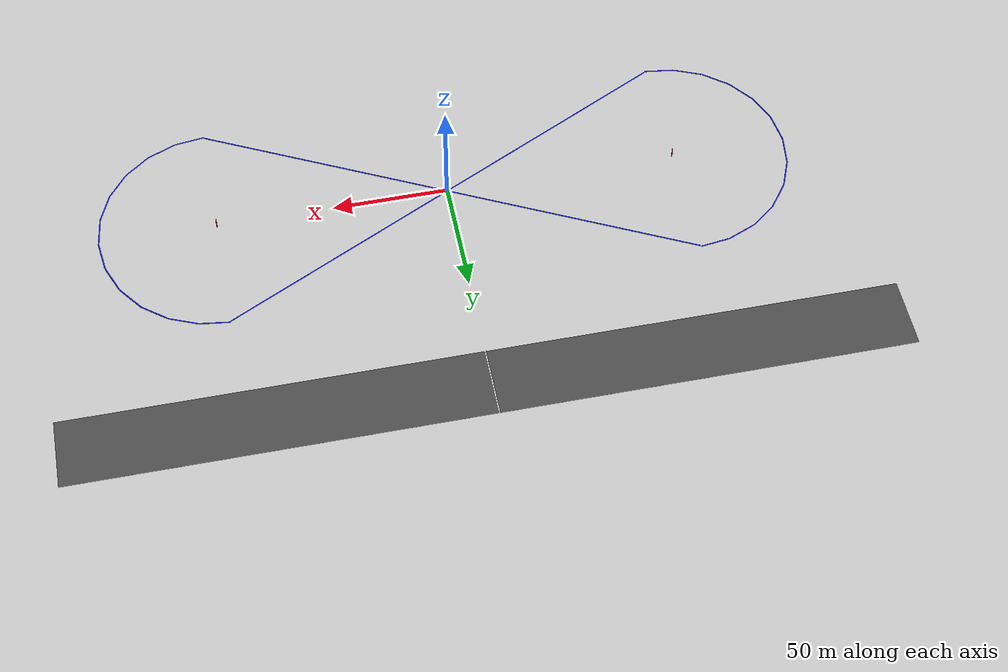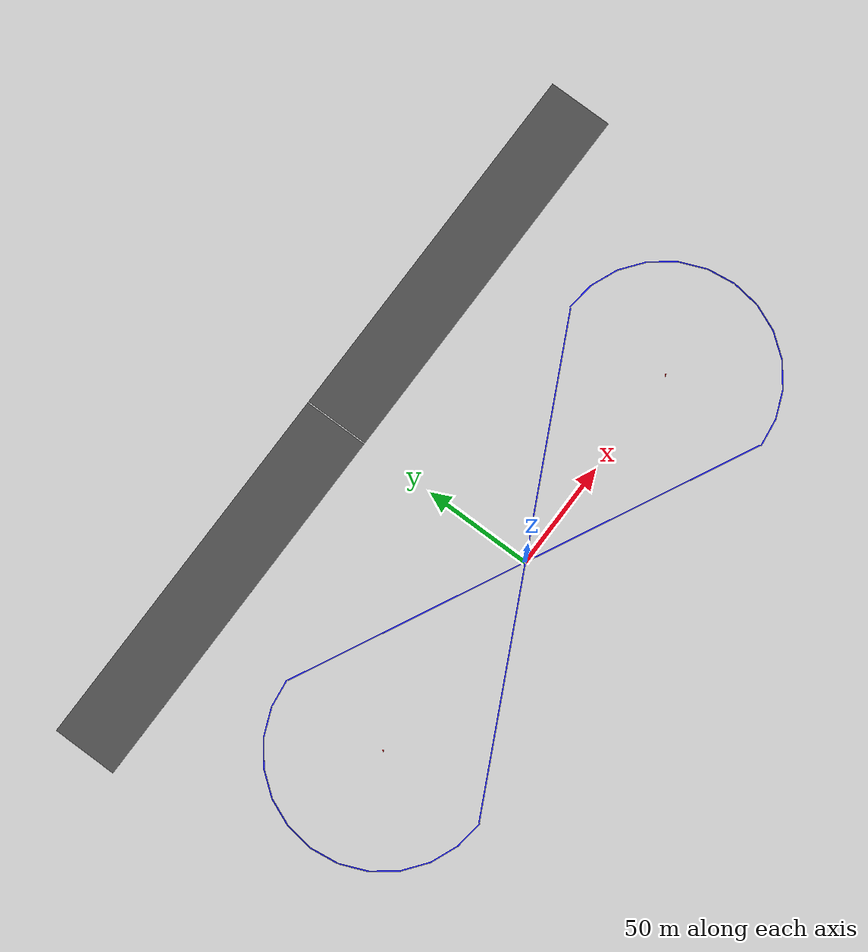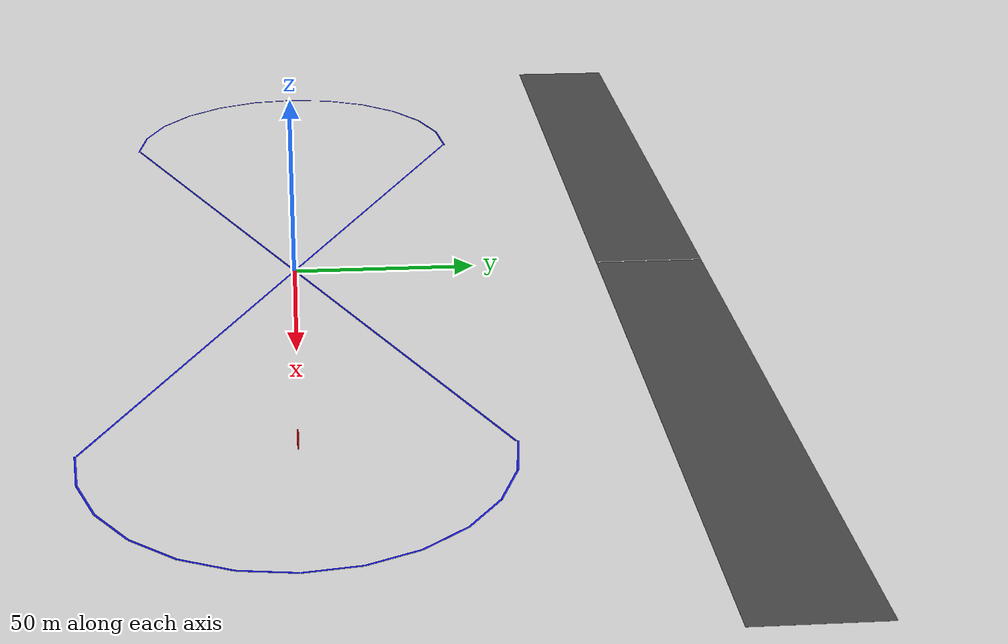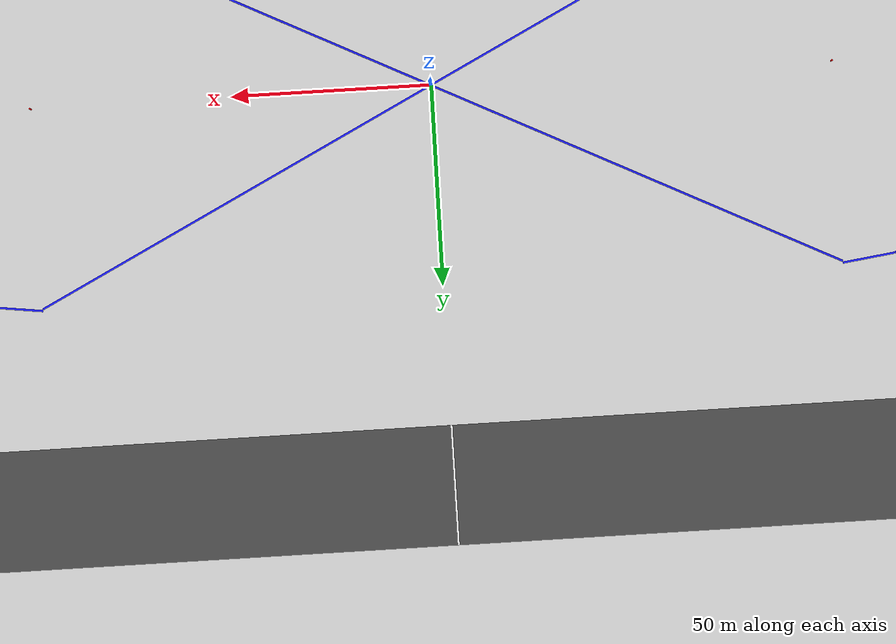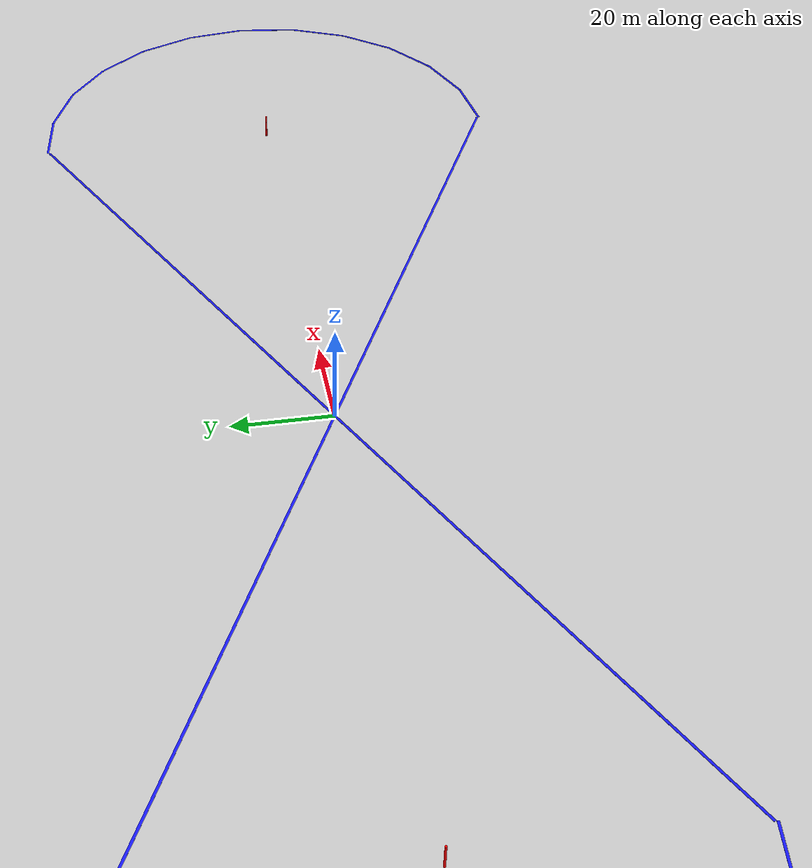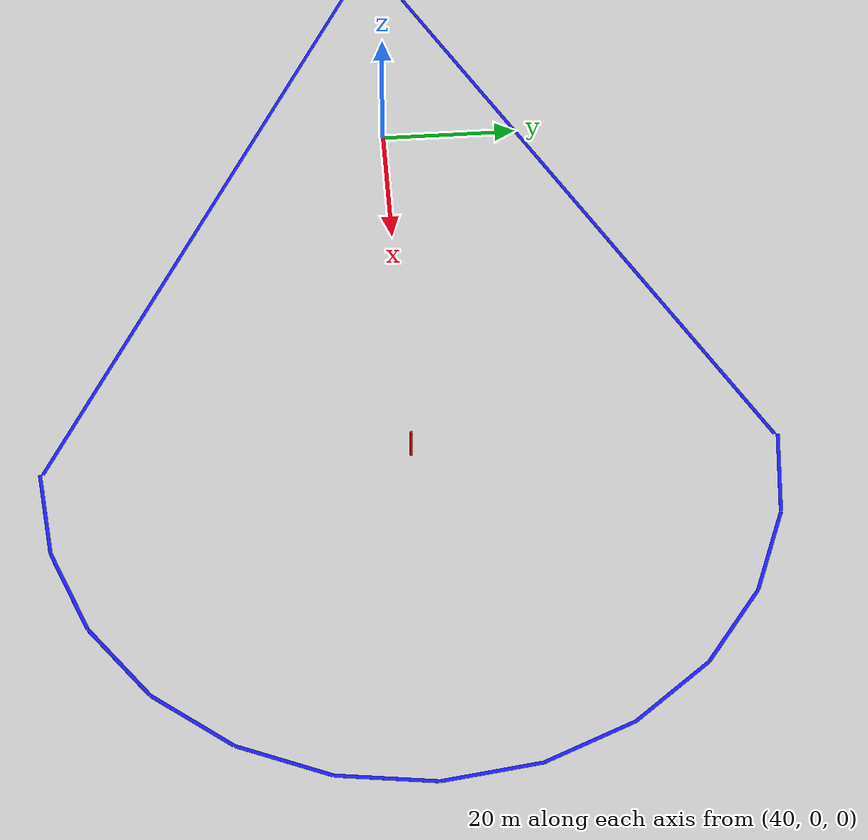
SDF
<sdf version="1.9">
 <world name="iris_runway">
  <physics name="1ms" type="ignore">
   <max_step_size>0.001</max_step_size>
   <real_time_factor>1.0</real_time_factor>
  </physics>
  <plugin filename="gz-sim-physics-system" name="gz::sim::systems::Physics"/>
  <plugin filename="gz-sim-sensors-system" name="gz::sim::systems::Sensors">
   <render_engine>ogre2</render_engine>
  </plugin>
  <plugin filename="gz-sim-user-commands-system" name="gz::sim::systems::UserCommands"/>
  <plugin filename="gz-sim-scene-broadcaster-system" name="gz::sim::systems::SceneBroadcaster"/>
  <plugin filename="gz-sim-imu-system" name="gz::sim::systems::Imu"/>
  <plugin filename="gz-sim-navsat-system" name="gz::sim::systems::NavSat"/>
  <scene><ambient>1.0 1.0 1.0</ambient><background>0.8 0.8 0.8</background></scene>
  <spherical_coordinates>
   <latitude_deg>-35.363262</latitude_deg>
   <longitude_deg>149.165237</longitude_deg>
   <elevation>584</elevation>
   <heading_deg>0</heading_deg>
   <surface_model>EARTH_WGS84</surface_model>
  </spherical_coordinates>
  <light type="directional" name="sun">
   <pose>0 0 10 0 0 0</pose>
   <diffuse>0.8 0.8 0.8 1</diffuse>
   <specular>0.8 0.8 0.8 1</specular>
   <attenuation>
    <range>1000</range>
    <constant>0.9</constant>
    <linear>0.01</linear>
    <quadratic>0.001</quadratic>
   </attenuation>
   <direction>-0.5 0.1 -0.9</direction>
  </light>
  <model name="axes">
   <static>1</static>
   <link name="link">
    <visual name="r">
     <cast_shadows>0</cast_shadows>
     <pose>5 0 0.1 0 0 0</pose>
     <geometry><box><size>10 0.01 0.01</size></box></geometry>
     <material>
      <ambient>1 0 0 0.8</ambient>
      <diffuse>1 0 0 0.8</diffuse>
      <emissive>1 0 0 0.8</emissive>
      <specular>0.5 0.5 0.5 0.8</specular>
     </material>
    </visual>
    <visual name="g">
     <cast_shadows>0</cast_shadows>
     <pose>0 5 0.1 0 0 0</pose>
     <geometry><box><size>0.01 10 0.01</size></box></geometry>
     <material>
      <ambient>0 1 0 0.8</ambient>
      <diffuse>0 1 0 0.8</diffuse>
      <emissive>0 1 0 0.8</emissive>
      <specular>0.5 0.5 0.5 0.8</specular>
     </material>
    </visual>
    <visual name="b">
     <cast_shadows>0</cast_shadows>
     <pose>0 0 5.1 0 0 0</pose>
     <geometry><box><size>0.01 0.01 10</size></box></geometry>
     <material>
      <ambient>0 0 1 0.8</ambient>
      <diffuse>0 0 1 0.8</diffuse>
      <emissive>0 0 1 0.8</emissive>
      <specular>0.5 0.5 0.5 0.8</specular>
     </material>
    </visual>
    <sensor name="navsat_sensor" type="navsat"><always_on>1</always_on><update_rate>1</update_rate></sensor>
   </link>
  </model>
  <model name="flight_path_visual_aid">
   <static>true</static>
   <pose>0 0 0.08 0 0 0</pose>
   <link name="path_link">
    <visual name="right_arc_1">
     <pose>106.5263 49.5722 0 0 0 3.0107</pose>
     <geometry><box><size>13.0900 0.5 0.02</size></box></geometry>
     <material><ambient>0.1 0.1 1 1</ambient><diffuse>0.1 0.1 1 1</diffuse></material>
    </visual>
    <visual name="right_arc_2">
     <pose>119.1342 46.1940 0 0 0 2.7489</pose>
     <geometry><box><size>13.0900 0.5 0.02</size></box></geometry>
     <material><ambient>0.1 0.1 1 1</ambient><diffuse>0.1 0.1 1 1</diffuse></material>
    </visual>
    <visual name="right_arc_3">
     <pose>130.4381 39.6677 0 0 0 2.4871</pose>
     <geometry><box><size>13.0900 0.5 0.02</size></box></geometry>
     <material><ambient>0.1 0.1 1 1</ambient><diffuse>0.1 0.1 1 1</diffuse></material>
    </visual>
    <visual name="right_arc_4">
     <pose>139.6677 30.4381 0 0 0 2.2253</pose>
     <geometry><box><size>13.0900 0.5 0.02</size></box></geometry>
     <material><ambient>0.1 0.1 1 1</ambient><diffuse>0.1 0.1 1 1</diffuse></material>
    </visual>
    <visual name="right_arc_5">
     <pose>146.1940 19.1342 0 0 0 1.9635</pose>
     <geometry><box><size>13.0900 0.5 0.02</size></box></geometry>
     <material><ambient>0.1 0.1 1 1</ambient><diffuse>0.1 0.1 1 1</diffuse></material>
    </visual>
    <visual name="right_arc_6">
     <pose>149.5722 6.5263 0 0 0 1.7017</pose>
     <geometry><box><size>13.0900 0.5 0.02</size></box></geometry>
     <material><ambient>0.1 0.1 1 1</ambient><diffuse>0.1 0.1 1 1</diffuse></material>
    </visual>
    <visual name="right_arc_7">
     <pose>149.5722 -6.5263 0 0 0 1.4399</pose>
     <geometry><box><size>13.0900 0.5 0.02</size></box></geometry>
     <material><ambient>0.1 0.1 1 1</ambient><diffuse>0.1 0.1 1 1</diffuse></material>
    </visual>
    <visual name="right_arc_8">
     <pose>146.1940 -19.1342 0 0 0 1.1781</pose>
     <geometry><box><size>13.0900 0.5 0.02</size></box></geometry>
     <material><ambient>0.1 0.1 1 1</ambient><diffuse>0.1 0.1 1 1</diffuse></material>
    </visual>
    <visual name="right_arc_9">
     <pose>139.6677 -30.4381 0 0 0 0.9163</pose>
     <geometry><box><size>13.0900 0.5 0.02</size></box></geometry>
     <material><ambient>0.1 0.1 1 1</ambient><diffuse>0.1 0.1 1 1</diffuse></material>
    </visual>
    <visual name="right_arc_10">
     <pose>130.4381 -39.6677 0 0 0 0.6545</pose>
     <geometry><box><size>13.0900 0.5 0.02</size></box></geometry>
     <material><ambient>0.1 0.1 1 1</ambient><diffuse>0.1 0.1 1 1</diffuse></material>
    </visual>
    <visual name="right_arc_11">
     <pose>119.1342 -46.1940 0 0 0 0.3927</pose>
     <geometry><box><size>13.0900 0.5 0.02</size></box></geometry>
     <material><ambient>0.1 0.1 1 1</ambient><diffuse>0.1 0.1 1 1</diffuse></material>
    </visual>
    <visual name="right_arc_12">
     <pose>106.5263 -49.5722 0 0 0 0.1309</pose>
     <geometry><box><size>13.0900 0.5 0.02</size></box></geometry>
     <material><ambient>0.1 0.1 1 1</ambient><diffuse>0.1 0.1 1 1</diffuse></material>
    </visual>
    <visual name="left_arc_1">
     <pose>-106.5263 49.5722 0 0 0 3.2725</pose>
     <geometry><box><size>13.0900 0.5 0.02</size></box></geometry>
     <material><ambient>0.1 0.1 1 1</ambient><diffuse>0.1 0.1 1 1</diffuse></material>
    </visual>
    <visual name="left_arc_2">
     <pose>-119.1342 46.1940 0 0 0 3.5343</pose>
     <geometry><box><size>13.0900 0.5 0.02</size></box></geometry>
     <material><ambient>0.1 0.1 1 1</ambient><diffuse>0.1 0.1 1 1</diffuse></material>
    </visual>
    <visual name="left_arc_3">
     <pose>-130.4381 39.6677 0 0 0 3.7961</pose>
     <geometry><box><size>13.0900 0.5 0.02</size></box></geometry>
     <material><ambient>0.1 0.1 1 1</ambient><diffuse>0.1 0.1 1 1</diffuse></material>
    </visual>
    <visual name="left_arc_4">
     <pose>-139.6677 30.4381 0 0 0 4.0579</pose>
     <geometry><box><size>13.0900 0.5 0.02</size></box></geometry>
     <material><ambient>0.1 0.1 1 1</ambient><diffuse>0.1 0.1 1 1</diffuse></material>
    </visual>
    <visual name="left_arc_5">
     <pose>-146.1940 19.1342 0 0 0 4.3197</pose>
     <geometry><box><size>13.0900 0.5 0.02</size></box></geometry>
     <material><ambient>0.1 0.1 1 1</ambient><diffuse>0.1 0.1 1 1</diffuse></material>
    </visual>
    <visual name="left_arc_6">
     <pose>-149.5722 6.5263 0 0 0 4.5815</pose>
     <geometry><box><size>13.0900 0.5 0.02</size></box></geometry>
     <material><ambient>0.1 0.1 1 1</ambient><diffuse>0.1 0.1 1 1</diffuse></material>
    </visual>
    <visual name="left_arc_7">
     <pose>-149.5722 -6.5263 0 0 0 4.8433</pose>
     <geometry><box><size>13.0900 0.5 0.02</size></box></geometry>
     <material><ambient>0.1 0.1 1 1</ambient><diffuse>0.1 0.1 1 1</diffuse></material>
    </visual>
    <visual name="left_arc_8">
     <pose>-146.1940 -19.1342 0 0 0 5.1051</pose>
     <geometry><box><size>13.0900 0.5 0.02</size></box></geometry>
     <material><ambient>0.1 0.1 1 1</ambient><diffuse>0.1 0.1 1 1</diffuse></material>
    </visual>
    <visual name="left_arc_9">
     <pose>-139.6677 -30.4381 0 0 0 5.3669</pose>
     <geometry><box><size>13.0900 0.5 0.02</size></box></geometry>
     <material><ambient>0.1 0.1 1 1</ambient><diffuse>0.1 0.1 1 1</diffuse></material>
    </visual>
    <visual name="left_arc_10">
     <pose>-130.4381 -39.6677 0 0 0 5.6287</pose>
     <geometry><box><size>13.0900 0.5 0.02</size></box></geometry>
     <material><ambient>0.1 0.1 1 1</ambient><diffuse>0.1 0.1 1 1</diffuse></material>
    </visual>
    <visual name="left_arc_11">
     <pose>-119.1342 -46.1940 0 0 0 5.8905</pose>
     <geometry><box><size>13.0900 0.5 0.02</size></box></geometry>
     <material><ambient>0.1 0.1 1 1</ambient><diffuse>0.1 0.1 1 1</diffuse></material>
    </visual>
    <visual name="left_arc_12">
     <pose>-106.5263 -49.5722 0 0 0 6.1523</pose>
     <geometry><box><size>13.0900 0.5 0.02</size></box></geometry>
     <material><ambient>0.1 0.1 1 1</ambient><diffuse>0.1 0.1 1 1</diffuse></material>
    </visual>
    <visual name="diagonal_bottom_right_to_top_left">
     <pose>0.0000 0.0000 0 0 0 2.6779</pose>
     <geometry><box><size>223.6068 0.5 0.02</size></box></geometry>
     <material><ambient>0.1 0.1 1 1</ambient><diffuse>0.1 0.1 1 1</diffuse></material>
    </visual>
    <visual name="diagonal_bottom_left_to_top_right">
     <pose>0.0000 0.0000 0 0 0 0.4636</pose>
     <geometry><box><size>223.6068 0.5 0.02</size></box></geometry>
     <material><ambient>0.1 0.1 1 1</ambient><diffuse>0.1 0.1 1 1</diffuse></material>
    </visual>
   </link>
  </model>
  <model name="runway2">
   <static>true</static>
   <pose>0 100 0.059999999999999998 0 0 0</pose>
   <link name="link">
    <visual name="visual">
     <geometry><box><size>350 30 0.02</size></box></geometry>
     <material>
      <script><uri>file://media/materials/scripts/gazebo.material</uri><name>Gazebo/DarkGrey</name></script>
     </material>
    </visual>
    <inertial>
     <mass>1</mass>
     <inertia><ixx>1</ixx><ixy>0</ixy><ixz>0</ixz><iyy>1</iyy><iyz>0</iyz><izz>1</izz></inertia>
    </inertial>
   </link>
  </model>
  <model name="start_finish_line">
   <static>true</static>
   <pose>0 100 0.070000000000000007 0 0 0</pose>
   <link name="link">
    <visual name="visual">
     <geometry><box><size>0.5 30 0.002</size></box></geometry>
     <material><ambient>1 1 1 1</ambient><diffuse>1 1 1 1</diffuse></material>
    </visual>
    <inertial>
     <mass>1</mass>
     <inertia><ixx>1</ixx><ixy>0</ixy><ixz>0</ixz><iyy>1</iyy><iyz>0</iyz><izz>1</izz></inertia>
    </inertial>
   </link>
  </model>
  <model name="reference_pole_1">
   <static>true</static>
   <pose>100 0 2.5 0 0 0</pose>
   <link name="link">
    <visual name="visual">
     <geometry><cylinder><radius>0.20000000000000001</radius><length>5</length></cylinder></geometry>
     <material><ambient>1 0 0 1</ambient><diffuse>1 0 0 1</diffuse></material>
    </visual>
    <inertial>
     <mass>1</mass>
     <inertia><ixx>1</ixx><ixy>0</ixy><ixz>0</ixz><iyy>1</iyy><iyz>0</iyz><izz>1</izz></inertia>
    </inertial>
   </link>
  </model>
  <model name="reference_pole_2">
   <static>true</static>
   <pose>-100 0 2.5 0 0 0</pose>
   <link name="link">
    <visual name="visual">
     <geometry><cylinder><radius>0.20000000000000001</radius><length>5</length></cylinder></geometry>
     <material><ambient>1 0 0 1</ambient><diffuse>1 0 0 1</diffuse></material>
    </visual>
    <inertial>
     <mass>1</mass>
     <inertia><ixx>1</ixx><ixy>0</ixy><ixz>0</ixz><iyy>1</iyy><iyz>0</iyz><izz>1</izz></inertia>
    </inertial>
   </link>
  </model>
 </world>
</sdf>
